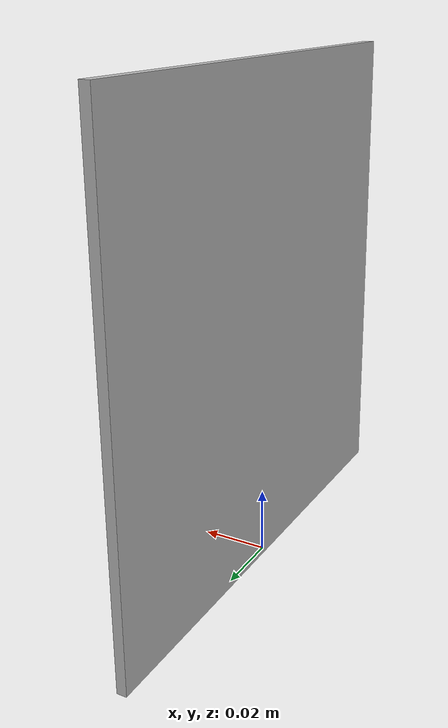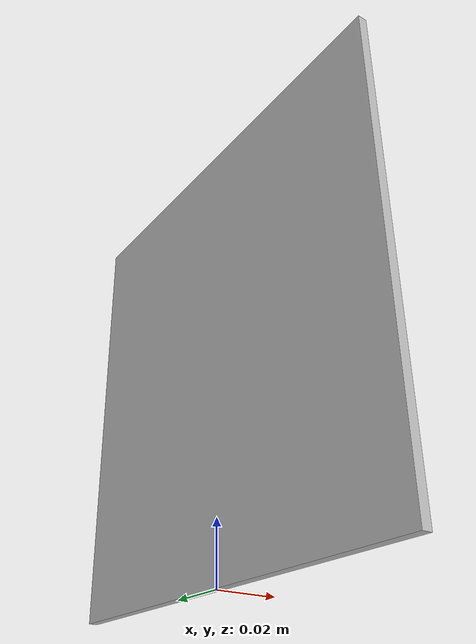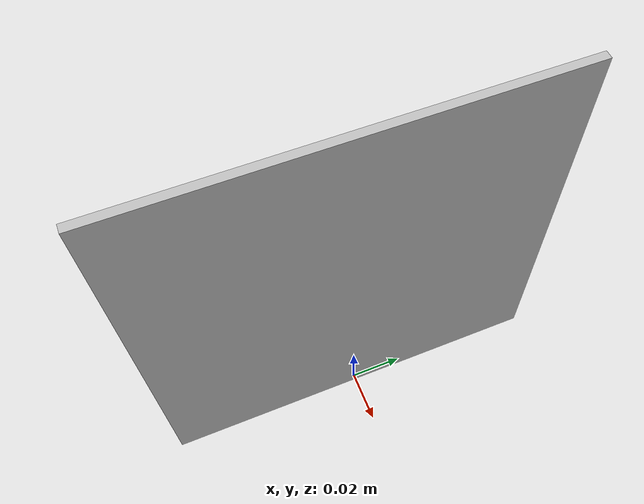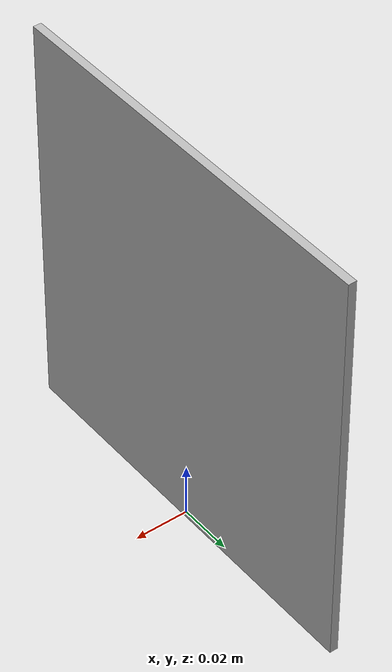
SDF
<?xml version="1.0" ?><sdf version="1.4">
  <model name="1b">
    <static>true</static>
    <link name="link">
      <visual name="visual">
        <geometry>
          <mesh>
            <uri>model://1b/meshes/1b.dae</uri>
          <scale>0.3 0.3 0.3</scale></mesh>
        </geometry>
      </visual>
    </link>
  </model>
</sdf>
